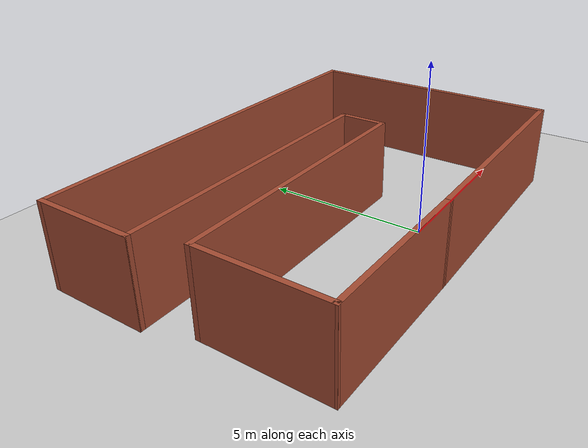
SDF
<sdf version="1.7">
 <world name="default">
  <light name="sun" type="directional">
   <pose>0 0 10 0 -0 0</pose>
   <diffuse>0.8 0.8 0.8 1</diffuse>
   <specular>0.2 0.2 0.2 1</specular>
   <attenuation>
    <range>1000</range>
    <constant>0.9</constant>
    <linear>0.01</linear>
    <quadratic>0.001</quadratic>
   </attenuation>
   <direction>-0.5 0.1 -0.9</direction>
   <spot><inner_angle>0</inner_angle><outer_angle>0</outer_angle><falloff>0</falloff></spot>
  </light>
  <model name="ground_plane">
   <static>1</static>
   <link name="link">
    <collision name="collision">
     <geometry><plane><normal>0 0 1</normal><size>100 100</size></plane></geometry>
     <surface><friction><ode><mu>100</mu><mu2>50</mu2></ode></friction></surface>
    </collision>
    <visual name="visual">
     <cast_shadows>0</cast_shadows>
     <geometry><plane><normal>0 0 1</normal><size>100 100</size></plane></geometry>
     <material>
      <script><uri>file://media/materials/scripts/gazebo.material</uri><name>Gazebo/Grey</name></script>
     </material>
    </visual>
   </link>
  </model>
  <gravity>0 0 -9.8</gravity>
  <magnetic_field>6e-06 2.3e-05 -4.2e-05</magnetic_field>
  <atmosphere type="adiabatic"/>
  <physics type="ode">
   <max_step_size>0.001</max_step_size>
   <real_time_factor>1</real_time_factor>
   <real_time_update_rate>1000</real_time_update_rate>
  </physics>
  <scene><ambient>0.4 0.4 0.4 1</ambient><background>0.7 0.7 0.7 1</background><shadows>1</shadows></scene>
  <spherical_coordinates>
   <surface_model>EARTH_WGS84</surface_model>
   <latitude_deg>0</latitude_deg>
   <longitude_deg>0</longitude_deg>
   <elevation>0</elevation>
   <heading_deg>0</heading_deg>
  </spherical_coordinates>
  <model name="testing">
   <pose>-1.155 2.29461 0 0 -0 0</pose>
   <link name="Wall_0">
    <collision name="Wall_0_Collision">
     <geometry><box><size>7.25 0.15 2.5</size></box></geometry>
     <pose>0 0 1.25 0 -0 0</pose>
    </collision>
    <visual name="Wall_0_Visual">
     <pose>0 0 1.25 0 -0 0</pose>
     <geometry><box><size>7.25 0.15 2.5</size></box></geometry>
     <material>
      <script><uri>file://media/materials/scripts/gazebo.material</uri><name>Gazebo/Bricks</name></script>
      <ambient>1 1 1 1</ambient>
     </material>
     <meta><layer>0</layer></meta>
    </visual>
    <pose>2.625 -3.92461 0 0 -0 0</pose>
   </link>
   <link name="Wall_1">
    <collision name="Wall_1_Collision">
     <geometry><box><size>8 0.15 2.5</size></box></geometry>
     <pose>0 0 1.25 0 -0 0</pose>
    </collision>
    <visual name="Wall_1_Visual">
     <pose>0 0 1.25 0 -0 0</pose>
     <geometry><box><size>8 0.15 2.5</size></box></geometry>
     <material>
      <script><uri>file://media/materials/scripts/gazebo.material</uri><name>Gazebo/Bricks</name></script>
      <ambient>1 1 1 1</ambient>
     </material>
     <meta><layer>0</layer></meta>
    </visual>
    <pose>6.175 0.000392 0 0 -0 1.5708</pose>
   </link>
   <link name="Wall_2">
    <collision name="Wall_2_Collision">
     <geometry><box><size>12.5 0.15 2.5</size></box></geometry>
     <pose>0 0 1.25 0 -0 0</pose>
    </collision>
    <visual name="Wall_2_Visual">
     <pose>0 0 1.25 0 -0 0</pose>
     <geometry><box><size>12.5 0.15 2.5</size></box></geometry>
     <material>
      <script><uri>file://media/materials/scripts/gazebo.material</uri><name>Gazebo/Bricks</name></script>
      <ambient>1 1 1 1</ambient>
     </material>
     <meta><layer>0</layer></meta>
    </visual>
    <pose>0 3.92539 0 0 -0 3.14159</pose>
   </link>
   <link name="Wall_3">
    <collision name="Wall_3_Collision">
     <geometry><box><size>3 0.15 2.5</size></box></geometry>
     <pose>0 0 1.25 0 -0 0</pose>
    </collision>
    <visual name="Wall_3_Visual">
     <pose>0 0 1.25 0 -0 0</pose>
     <geometry><box><size>3 0.15 2.5</size></box></geometry>
     <material>
      <script><uri>file://media/materials/scripts/gazebo.material</uri><name>Gazebo/Bricks</name></script>
      <ambient>1 1 1 1</ambient>
     </material>
     <meta><layer>0</layer></meta>
    </visual>
    <pose>-6.175 2.50039 0 0 -0 -1.5708</pose>
   </link>
   <link name="Wall_4">
    <collision name="Wall_4_Collision">
     <geometry><box><size>8.75 0.15 2.5</size></box></geometry>
     <pose>0 0 1.25 0 -0 0</pose>
    </collision>
    <visual name="Wall_4_Visual">
     <pose>0 0 1.25 0 -0 0</pose>
     <geometry><box><size>8.75 0.15 2.5</size></box></geometry>
     <material>
      <script><uri>file://media/materials/scripts/gazebo.material</uri><name>Gazebo/Bricks</name></script>
      <ambient>1 1 1 1</ambient>
     </material>
     <meta><layer>0</layer></meta>
    </visual>
    <pose>-1.875 1.07539 0 0 -0 0</pose>
   </link>
   <link name="Wall_5">
    <collision name="Wall_5_Collision">
     <geometry><box><size>1.5 0.15 2.5</size></box></geometry>
     <pose>0 0 1.25 0 -0 0</pose>
    </collision>
    <visual name="Wall_5_Visual">
     <pose>0 0 1.25 0 -0 0</pose>
     <geometry><box><size>1.5 0.15 2.5</size></box></geometry>
     <material>
      <script><uri>file://media/materials/scripts/gazebo.material</uri><name>Gazebo/Bricks</name></script>
      <ambient>1 1 1 1</ambient>
     </material>
     <meta><layer>0</layer></meta>
    </visual>
    <pose>2.425 0.400392 0 0 -0 -1.5708</pose>
   </link>
   <link name="Wall_6">
    <collision name="Wall_6_Collision">
     <geometry><box><size>8.25 0.15 2.5</size></box></geometry>
     <pose>0 0 1.25 0 -0 0</pose>
    </collision>
    <visual name="Wall_6_Visual">
     <pose>0 0 1.25 0 -0 0</pose>
     <geometry><box><size>8.25 0.15 2.5</size></box></geometry>
     <material>
      <script><uri>file://media/materials/scripts/gazebo.material</uri><name>Gazebo/Bricks</name></script>
      <ambient>1 1 1 1</ambient>
     </material>
     <meta><layer>0</layer></meta>
    </visual>
    <pose>-1.625 -0.274608 0 0 -0 3.14159</pose>
   </link>
   <link name="Wall_7">
    <collision name="Wall_7_Collision">
     <geometry><box><size>3.75 0.15 2.5</size></box></geometry>
     <pose>0 0 1.25 0 -0 0</pose>
    </collision>
    <visual name="Wall_7_Visual">
     <pose>0 0 1.25 0 -0 0</pose>
     <geometry><box><size>3.75 0.15 2.5</size></box></geometry>
     <material>
      <script><uri>file://media/materials/scripts/gazebo.material</uri><name>Gazebo/Bricks</name></script>
      <ambient>1 1 1 1</ambient>
     </material>
     <meta><layer>0</layer></meta>
    </visual>
    <pose>-5.675 -2.07461 0 0 -0 -1.5708</pose>
   </link>
   <link name="Wall_8">
    <collision name="Wall_8_Collision">
     <geometry><box><size>4.90026 0.15 2.5</size></box></geometry>
     <pose>0 0 1.25 0 -0 0</pose>
    </collision>
    <visual name="Wall_8_Visual">
     <pose>0 0 1.25 0 -0 0</pose>
     <geometry><box><size>4.90026 0.15 2.5</size></box></geometry>
     <material>
      <script><uri>file://media/materials/scripts/gazebo.material</uri><name>Gazebo/Bricks</name></script>
      <ambient>1 1 1 1</ambient>
     </material>
     <meta><layer>0</layer></meta>
    </visual>
    <pose>-3.3 -3.89961 0 0 -0 -0.010526</pose>
   </link>
   <static>1</static>
  </model>
 </world>
</sdf>
